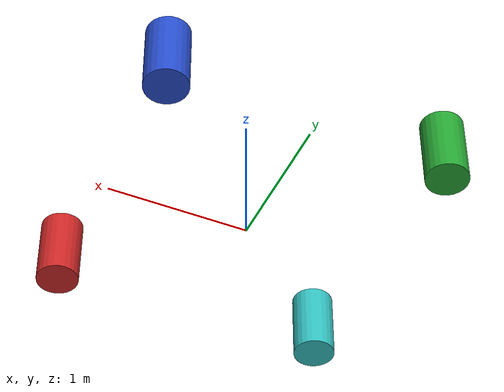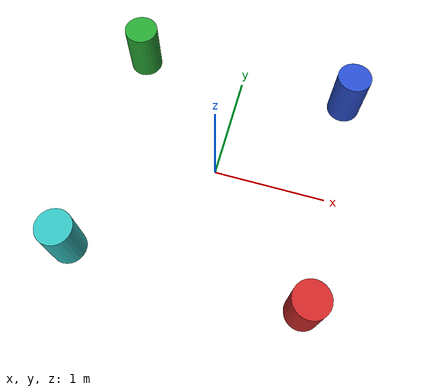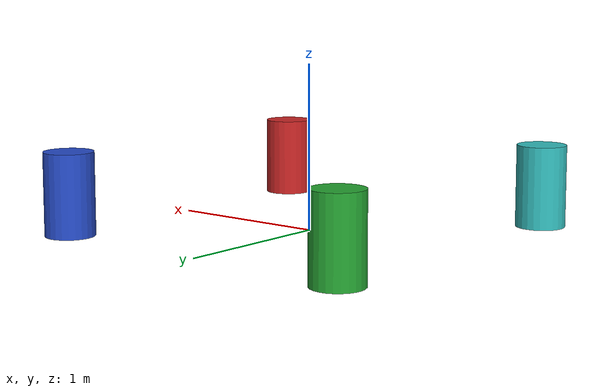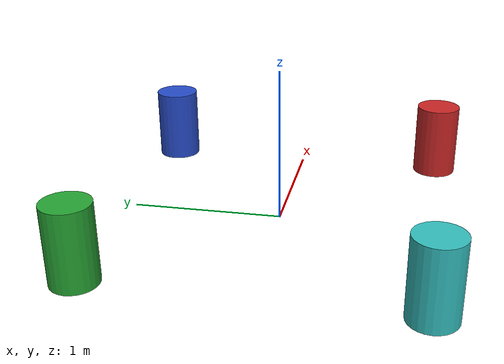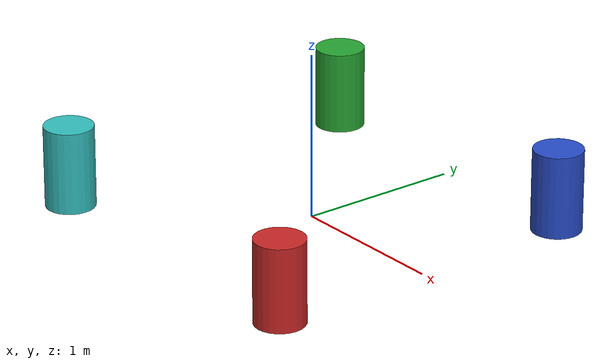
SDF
<?xml version='1.0'?>
<sdf version='1.6'>
  <model name='coloured_pillars'>
    <pose frame=''>0 0 0.25 0 0 0</pose>
    <link name='pillar_turq'>
      <pose frame=''>-1 -1 0 0 0 0</pose>
      <collision name='pillar_turq_coll'>
        <pose>0 0 0 0 0 0</pose>
        <geometry>
          <cylinder>
            <radius>0.15</radius>
            <length>0.5</length>
          </cylinder>
        </geometry>
        <max_contacts>10</max_contacts>
        <surface>
          <bounce/>
          <friction>
            <ode/>
          </friction>
          <contact>
            <ode/>
          </contact>
        </surface>
      </collision>
      <visual name='pillar_turq_vis'>
        <pose>0 0 0 0 0 0</pose>
        <geometry>
          <cylinder>
            <radius>0.15</radius>
            <length>0.5</length>
          </cylinder>
        </geometry>
        <material>
          <script>
            <uri>file://media/materials/scripts/gazebo.material</uri>
            <name>Gazebo/Turquoise</name>
          </script>
        </material>
      </visual>
    </link>
    <link name='pillar_green'>
      <pose frame=''>-1 1 0 0 0 0</pose>
      <collision name='pillar_green_coll'>
        <pose>0 0 0 0 0 0</pose>
        <geometry>
          <cylinder>
            <radius>0.15</radius>
            <length>0.5</length>
          </cylinder>
        </geometry>
        <max_contacts>10</max_contacts>
        <surface>
          <bounce/>
          <friction>
            <ode/>
          </friction>
          <contact>
            <ode/>
          </contact>
        </surface>
      </collision>
      <visual name='pillar_green_vis'>
        <pose>0 0 0 0 0 0</pose>
        <geometry>
          <cylinder>
            <radius>0.15</radius>
            <length>0.5</length>
          </cylinder>
        </geometry>
        <material>
          <script>
            <uri>file://media/materials/scripts/gazebo.material</uri>
            <name>Gazebo/Green</name>
          </script>
        </material>
      </visual>
    </link>
    <link name='pillar_blue'>
      <pose frame=''>1 1 0 0 0 0</pose>
      <collision name='pillar_green_coll'>
        <pose>0 0 0 0 0 0</pose>
        <geometry>
          <cylinder>
            <radius>0.15</radius>
            <length>0.5</length>
          </cylinder>
        </geometry>
        <max_contacts>10</max_contacts>
        <surface>
          <bounce/>
          <friction>
            <ode/>
          </friction>
          <contact>
            <ode/>
          </contact>
        </surface>
      </collision>
      <visual name='pillar_green_vis'>
        <pose>0 0 0 0 0 0</pose>
        <geometry>
          <cylinder>
            <radius>0.15</radius>
            <length>0.5</length>
          </cylinder>
        </geometry>
        <material>
          <script>
            <uri>file://media/materials/scripts/gazebo.material</uri>
            <name>Gazebo/Blue</name>
          </script>
        </material>
      </visual>
    </link>
    <link name='pillar_red'>
      <pose frame=''>1 -1 0 0 0 0</pose>
      <collision name='pillar_green_coll'>
        <pose>0 0 0 0 0 0</pose>
        <geometry>
          <cylinder>
            <radius>0.15</radius>
            <length>0.5</length>
          </cylinder>
        </geometry>
        <max_contacts>10</max_contacts>
        <surface>
          <bounce/>
          <friction>
            <ode/>
          </friction>
          <contact>
            <ode/>
          </contact>
        </surface>
      </collision>
      <visual name='pillar_green_vis'>
        <pose>0 0 0 0 0 0</pose>
        <geometry>
          <cylinder>
            <radius>0.15</radius>
            <length>0.5</length>
          </cylinder>
        </geometry>
        <material>
          <script>
            <uri>file://media/materials/scripts/gazebo.material</uri>
            <name>Gazebo/Red</name>
          </script>
        </material>
      </visual>
    </link>
    <static>1</static>
  </model>
</sdf>
